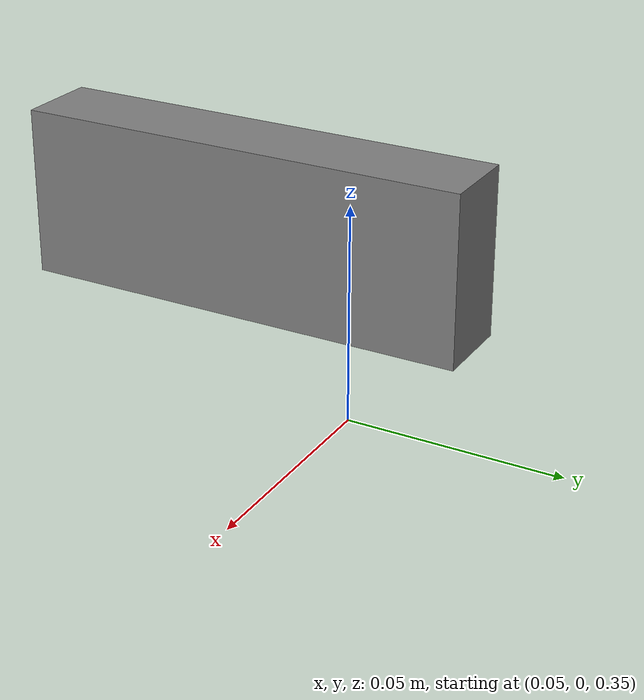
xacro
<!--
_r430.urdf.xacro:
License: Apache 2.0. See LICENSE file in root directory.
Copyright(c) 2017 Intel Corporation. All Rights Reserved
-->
<?xml version="1.0"?>
<robot name="keigan_motor" xmlns:xacro="http://ros.org/wiki/xacro">
  <xacro:include filename="$(find realsense2_camera)/urdf/_r430.urdf.xacro"/>

  <material name="Grey">
    <color rgba="0.2 0.2 0.2 1.0"/>
  </material>

  <link name="base_link"/>

  <link name="base_footprint"/>
  <joint name="base_footprint_joint" type="fixed">
    <origin xyz="0 0 0.006" rpy="0 0 0" />
    <parent link="base_footprint"/>
    <child link="base_link" />
  </joint>

  <sensor_r430 parent="base_link">
    <origin xyz="0.042 0 0.363" rpy="0 0 0"/>
  </sensor_r430>

  <link name="laser"/>
  <joint name="laser_joint" type="fixed">
    <origin xyz="-0.013 0 0.3938" rpy="0 0 ${M_PI}" />
    <parent link="base_link" />
    <child link="laser" />
  </joint>
</robot>

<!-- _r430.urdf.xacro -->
<robot name="sensor_r430" xmlns:xacro="http://ros.org/wiki/xacro">
  <xacro:property name="M_PI" value="3.1415926535897931" />

  <!-- The following values are approximate, and the camera node
   publishing TF values with actual calibrated camera extrinsic values -->
  <xacro:property name="r430_cam_depth_to_left_ir_offset" value="-0.025"/>
  <xacro:property name="r430_cam_depth_to_right_ir_offset" value="0.025"/>
  <xacro:property name="r430_cam_depth_to_fisheye_offset" value="0.042"/>

  <!-- The following values model the aluminum peripherial case for the
    R430 camera, with the camera joint represented by the actual
    peripherial camera tripod mount -->
  <xacro:property name="r430_cam_width" value="0.105"/>
  <xacro:property name="r430_cam_height" value="0.039"/>
  <xacro:property name="r430_cam_depth" value="0.019"/>
  <xacro:property name="r430_cam_mount_from_center_offset" value=".0275"/>

  <!-- The following offset is relative the the physical R430 camera peripherial
    camera tripod mount -->
  <xacro:property name="r430_cam_depth_px" value="0.00"/>
  <xacro:property name="r430_cam_depth_py" value="-0.035"/>
  <xacro:property name="r430_cam_depth_pz" value="0.028"/>

  <material name="aluminum">
    <color rgba="0.5 0.5 0.5 1"/>
  </material>

  <xacro:macro name="sensor_r430" params="parent *origin">

    <!-- camera body, with origin at bottom screw mount -->
    <joint name="camera_joint" type="fixed">
      <xacro:insert_block name="origin" />
      <parent link="${parent}"/>
      <child link="camera_link" />
    </joint>

    <link name="camera_link">
      <visual>
      <origin xyz="0 ${-r430_cam_mount_from_center_offset} ${r430_cam_height/2}" rpy="${M_PI/2} 0 ${M_PI/2}"/>
        <geometry>
          <box size="${r430_cam_width} ${r430_cam_height} ${r430_cam_depth}"/>
        </geometry>
        <material name="aluminum"/>
      </visual>
      <collision>
        <origin xyz="0.0 0.0 ${r430_cam_height/2}" rpy="0 0 0"/>
        <geometry>
        <box size="${r430_cam_depth} ${r430_cam_width} ${r430_cam_height}"/>
        </geometry>
      </collision>
      <inertial>
        <!-- The following are not reliable values, and should not be used for modeling -->
        <mass value="0.564" />
        <origin xyz="0 0 0" />
        <inertia ixx="0.003881243" ixy="0.0" ixz="0.0" iyy="0.000498940" iyz="0.0" izz="0.003879257" />
      </inertial>
    </link>

    <!-- camera depth joints and links -->
    <joint name="camera_depth_joint" type="fixed">
      <origin xyz="${r430_cam_depth_px} ${r430_cam_depth_py} ${r430_cam_depth_pz}" rpy="0 0 0"/>
      <parent link="camera_link"/>
      <child link="camera_depth_frame" />
    </joint>
    <link name="camera_depth_frame"/>

    <joint name="camera_depth_optical_joint" type="fixed">
      <origin xyz="0 0 0" rpy="${-M_PI/2} 0 ${-M_PI/2}" />
      <parent link="camera_depth_frame" />
      <child link="camera_depth_optical_frame" />
    </joint>
    <link name="camera_depth_optical_frame"/>

    <!-- camera left IR joints and links -->
    <joint name="camera_left_ir_joint" type="fixed">
      <origin xyz="0 ${r430_cam_depth_to_left_ir_offset} 0" rpy="0 0 0" />
      <parent link="camera_depth_frame" />
      <child link="camera_left_ir_frame" />
    </joint>
    <link name="camera_left_ir_frame"/>

    <joint name="camera_left_ir_optical_joint" type="fixed">
      <origin xyz="0 0 0" rpy="${-M_PI/2} 0 ${-M_PI/2}" />
      <parent link="camera_left_ir_frame" />
      <child link="camera_left_ir_optical_frame" />
    </joint>
    <link name="camera_left_ir_optical_frame"/>

    <!-- camera right IR joints and links -->
    <joint name="camera_right_ir_joint" type="fixed">
      <origin xyz="0 ${r430_cam_depth_to_right_ir_offset} 0" rpy="0 0 0" />
      <parent link="camera_depth_frame" />
      <child link="camera_right_ir_frame" />
    </joint>
    <link name="camera_right_ir_frame"/>

    <joint name="camera_right_ir_optical_joint" type="fixed">
      <origin xyz="0 0 0" rpy="${-M_PI/2} 0 ${-M_PI/2}" />
      <parent link="camera_right_ir_frame" />
      <child link="camera_right_ir_optical_frame" />
    </joint>
    <link name="camera_right_ir_optical_frame"/>

    <!-- camera fisheye joints and links -->
    <joint name="camera_fisheye_joint" type="fixed">
      <origin xyz="0 ${r430_cam_depth_to_fisheye_offset} 0" rpy="0 0 0" />
      <parent link="camera_depth_frame" />
      <child link="camera_fisheye_frame" />
    </joint>
    <link name="camera_fisheye_frame"/>

    <joint name="camera_fisheye_optical_joint" type="fixed">
      <origin xyz="0 0 0" rpy="${-M_PI/2} 0 ${-M_PI/2}" />
      <parent link="camera_fisheye_frame" />
      <child link="camera_fisheye_optical_frame" />
    </joint>
    <link name="camera_fisheye_optical_frame"/>
  </xacro:macro>
</robot>
